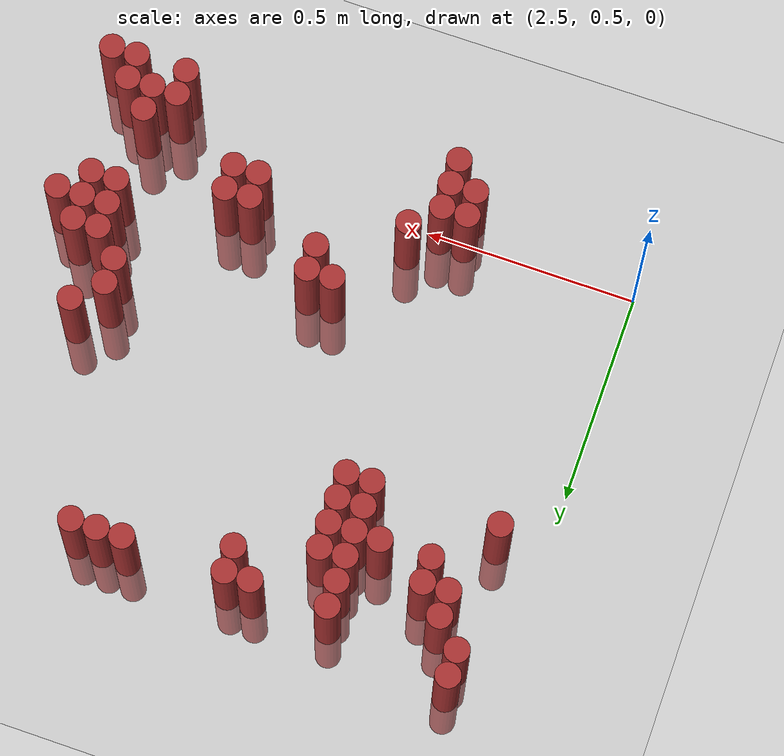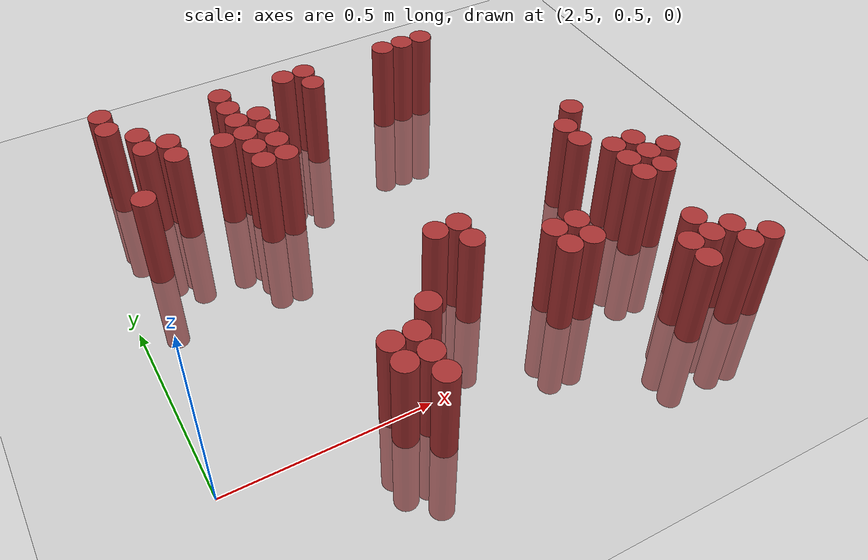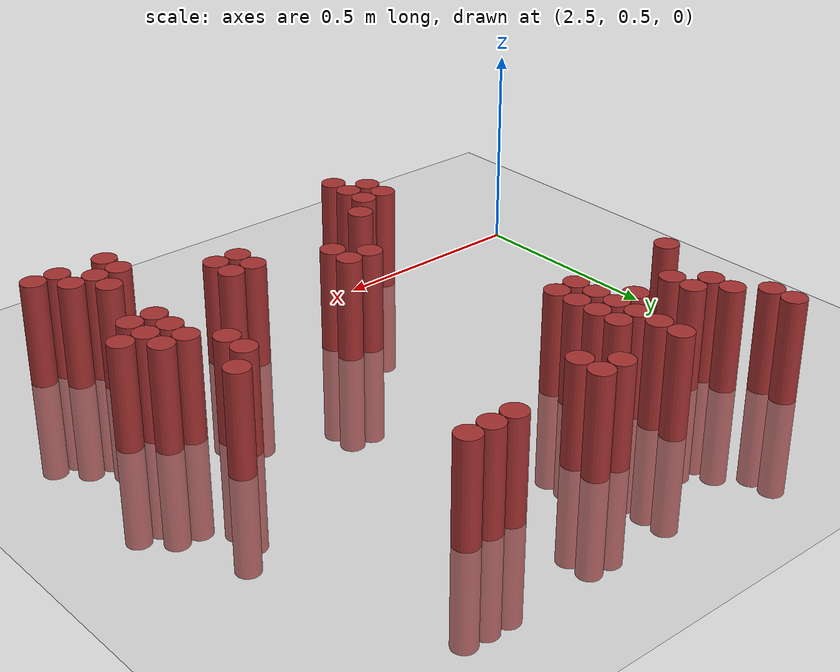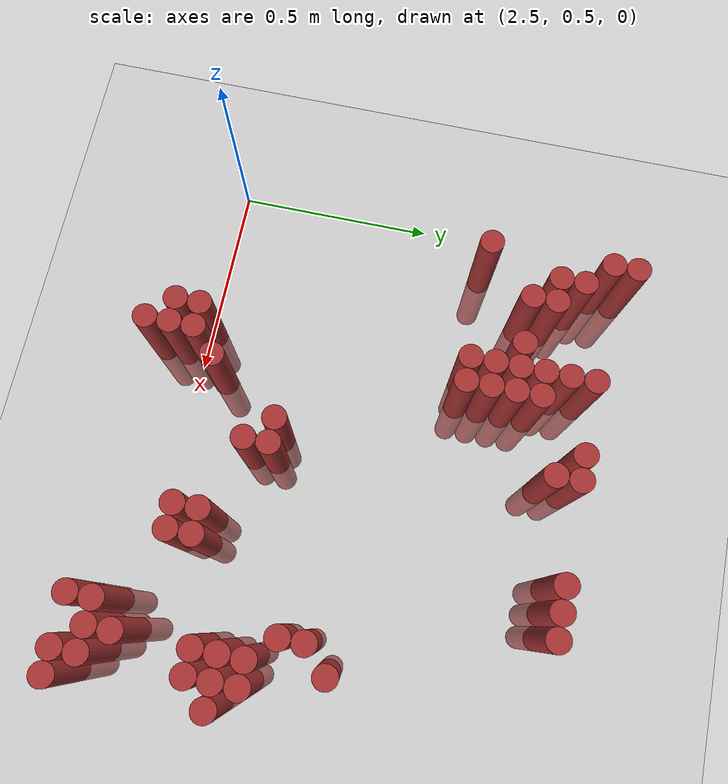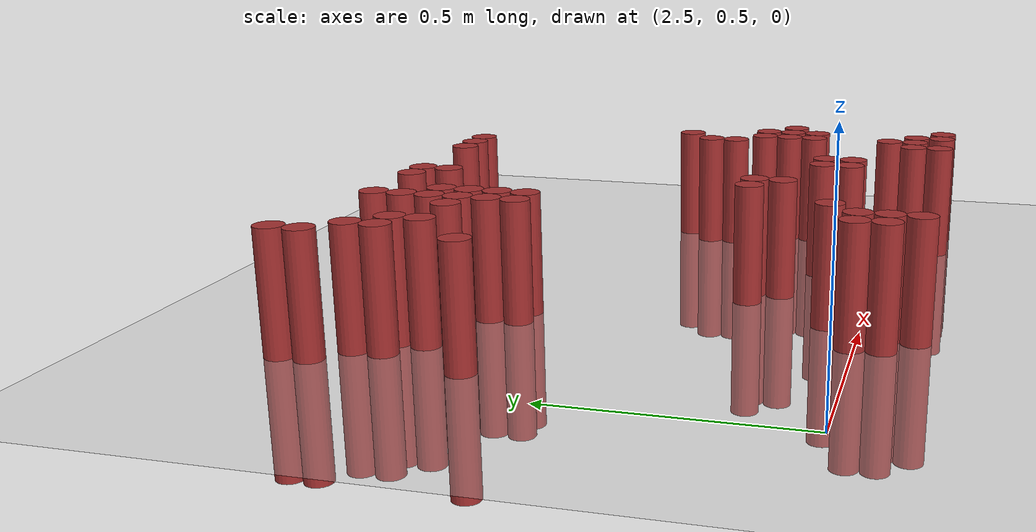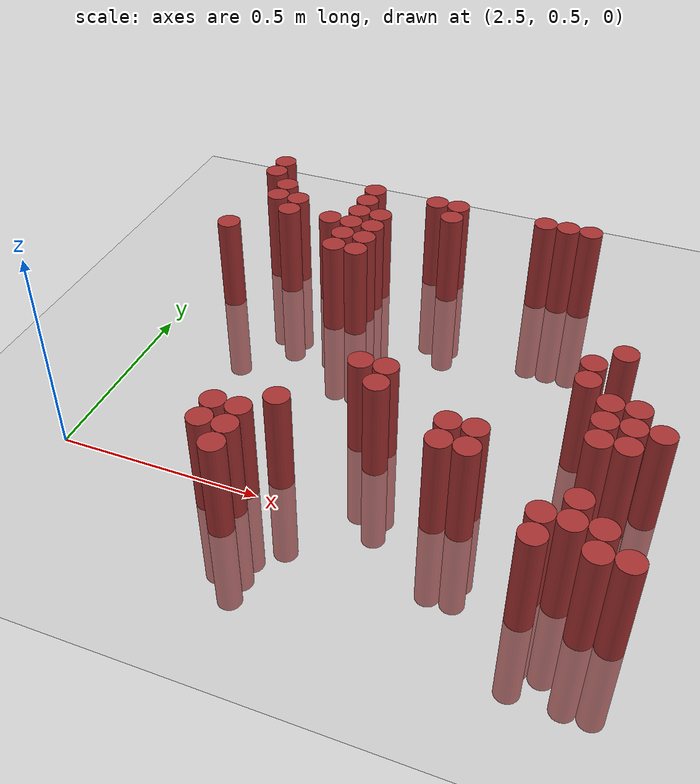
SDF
<sdf version="1.6">
 <world name="default">
  <model name="ground_plane">
   <static>1</static>
   <link name="link">
    <collision name="collision">
     <geometry><plane><normal>0 0 1</normal><size>100 100</size></plane></geometry>
     <surface><friction><ode><mu>100</mu><mu2>50</mu2></ode></friction></surface>
    </collision>
    <visual name="visual">
     <cast_shadows>0</cast_shadows>
     <geometry><plane><normal>0 0 1</normal><size>100 100</size></plane></geometry>
     <material>
      <script><uri>file://media/materials/scripts/gazebo.material</uri><name>Gazebo/Grey</name></script>
     </material>
    </visual>
   </link>
  </model>
  <model name="unit_cylinder_168">
   <static>1</static>
   <pose>2.610000 1.530000 0.000000 0.000000 0.000000 0.000000</pose>
   <link name="link">
    <inertial>
     <mass>1</mass>
     <inertia><ixx>0.145833</ixx><ixy>0</ixy><ixz>0</ixz><iyy>0.145833</iyy><iyz>0</iyz><izz>0.125</izz></inertia>
    </inertial>
    <collision name="collision">
     <geometry><cylinder><radius>0.030000</radius><length>0.5</length></cylinder></geometry>
    </collision>
    <visual name="visual">
     <geometry><cylinder><radius>0.030000</radius><length>0.5</length></cylinder></geometry>
     <material>
      <ambient>0.648000 0.192000 0.192000 1</ambient>
      <diffuse>0.648000 0.192000 0.192000 1</diffuse>
     </material>
     <material>
      <script><name>Gazebo/Grey</name><uri>file://media/materials/scripts/gazebo.material</uri></script>
     </material>
    </visual>
   </link>
  </model>
  <model name="unit_cylinder_180">
   <static>1</static>
   <pose>2.610000 1.470000 0.000000 0.000000 0.000000 0.000000</pose>
   <link name="link">
    <inertial>
     <mass>1</mass>
     <inertia><ixx>0.145833</ixx><ixy>0</ixy><ixz>0</ixz><iyy>0.145833</iyy><iyz>0</iyz><izz>0.125</izz></inertia>
    </inertial>
    <collision name="collision">
     <geometry><cylinder><radius>0.030000</radius><length>0.5</length></cylinder></geometry>
    </collision>
    <visual name="visual">
     <geometry><cylinder><radius>0.030000</radius><length>0.5</length></cylinder></geometry>
     <material>
      <ambient>0.648000 0.192000 0.192000 1</ambient>
      <diffuse>0.648000 0.192000 0.192000 1</diffuse>
     </material>
     <material>
      <script><name>Gazebo/Grey</name><uri>file://media/materials/scripts/gazebo.material</uri></script>
     </material>
    </visual>
   </link>
  </model>
  <model name="unit_cylinder_181">
   <static>1</static>
   <pose>2.910000 1.470000 0.000000 0.000000 0.000000 0.000000</pose>
   <link name="link">
    <inertial>
     <mass>1</mass>
     <inertia><ixx>0.145833</ixx><ixy>0</ixy><ixz>0</ixz><iyy>0.145833</iyy><iyz>0</iyz><izz>0.125</izz></inertia>
    </inertial>
    <collision name="collision">
     <geometry><cylinder><radius>0.030000</radius><length>0.5</length></cylinder></geometry>
    </collision>
    <visual name="visual">
     <geometry><cylinder><radius>0.030000</radius><length>0.5</length></cylinder></geometry>
     <material>
      <ambient>0.648000 0.192000 0.192000 1</ambient>
      <diffuse>0.648000 0.192000 0.192000 1</diffuse>
     </material>
     <material>
      <script><name>Gazebo/Grey</name><uri>file://media/materials/scripts/gazebo.material</uri></script>
     </material>
    </visual>
   </link>
  </model>
  <model name="unit_cylinder_182">
   <static>1</static>
   <pose>3.090000 1.470000 0.000000 0.000000 0.000000 0.000000</pose>
   <link name="link">
    <inertial>
     <mass>1</mass>
     <inertia><ixx>0.145833</ixx><ixy>0</ixy><ixz>0</ixz><iyy>0.145833</iyy><iyz>0</iyz><izz>0.125</izz></inertia>
    </inertial>
    <collision name="collision">
     <geometry><cylinder><radius>0.030000</radius><length>0.5</length></cylinder></geometry>
    </collision>
    <visual name="visual">
     <geometry><cylinder><radius>0.030000</radius><length>0.5</length></cylinder></geometry>
     <material>
      <ambient>0.648000 0.192000 0.192000 1</ambient>
      <diffuse>0.648000 0.192000 0.192000 1</diffuse>
     </material>
     <material>
      <script><name>Gazebo/Grey</name><uri>file://media/materials/scripts/gazebo.material</uri></script>
     </material>
    </visual>
   </link>
  </model>
  <model name="unit_cylinder_183">
   <static>1</static>
   <pose>3.150000 1.470000 0.000000 0.000000 0.000000 0.000000</pose>
   <link name="link">
    <inertial>
     <mass>1</mass>
     <inertia><ixx>0.145833</ixx><ixy>0</ixy><ixz>0</ixz><iyy>0.145833</iyy><iyz>0</iyz><izz>0.125</izz></inertia>
    </inertial>
    <collision name="collision">
     <geometry><cylinder><radius>0.030000</radius><length>0.5</length></cylinder></geometry>
    </collision>
    <visual name="visual">
     <geometry><cylinder><radius>0.030000</radius><length>0.5</length></cylinder></geometry>
     <material>
      <ambient>0.648000 0.192000 0.192000 1</ambient>
      <diffuse>0.648000 0.192000 0.192000 1</diffuse>
     </material>
     <material>
      <script><name>Gazebo/Grey</name><uri>file://media/materials/scripts/gazebo.material</uri></script>
     </material>
    </visual>
   </link>
  </model>
  <model name="unit_cylinder_184">
   <static>1</static>
   <pose>3.390000 1.470000 0.000000 0.000000 0.000000 0.000000</pose>
   <link name="link">
    <inertial>
     <mass>1</mass>
     <inertia><ixx>0.145833</ixx><ixy>0</ixy><ixz>0</ixz><iyy>0.145833</iyy><iyz>0</iyz><izz>0.125</izz></inertia>
    </inertial>
    <collision name="collision">
     <geometry><cylinder><radius>0.030000</radius><length>0.5</length></cylinder></geometry>
    </collision>
    <visual name="visual">
     <geometry><cylinder><radius>0.030000</radius><length>0.5</length></cylinder></geometry>
     <material>
      <ambient>0.648000 0.192000 0.192000 1</ambient>
      <diffuse>0.648000 0.192000 0.192000 1</diffuse>
     </material>
     <material>
      <script><name>Gazebo/Grey</name><uri>file://media/materials/scripts/gazebo.material</uri></script>
     </material>
    </visual>
   </link>
  </model>
  <model name="unit_cylinder_185">
   <static>1</static>
   <pose>3.450000 1.470000 0.000000 0.000000 0.000000 0.000000</pose>
   <link name="link">
    <inertial>
     <mass>1</mass>
     <inertia><ixx>0.145833</ixx><ixy>0</ixy><ixz>0</ixz><iyy>0.145833</iyy><iyz>0</iyz><izz>0.125</izz></inertia>
    </inertial>
    <collision name="collision">
     <geometry><cylinder><radius>0.030000</radius><length>0.5</length></cylinder></geometry>
    </collision>
    <visual name="visual">
     <geometry><cylinder><radius>0.030000</radius><length>0.5</length></cylinder></geometry>
     <material>
      <ambient>0.648000 0.192000 0.192000 1</ambient>
      <diffuse>0.648000 0.192000 0.192000 1</diffuse>
     </material>
     <material>
      <script><name>Gazebo/Grey</name><uri>file://media/materials/scripts/gazebo.material</uri></script>
     </material>
    </visual>
   </link>
  </model>
  <model name="unit_cylinder_186">
   <static>1</static>
   <pose>3.510000 1.470000 0.000000 0.000000 0.000000 0.000000</pose>
   <link name="link">
    <inertial>
     <mass>1</mass>
     <inertia><ixx>0.145833</ixx><ixy>0</ixy><ixz>0</ixz><iyy>0.145833</iyy><iyz>0</iyz><izz>0.125</izz></inertia>
    </inertial>
    <collision name="collision">
     <geometry><cylinder><radius>0.030000</radius><length>0.5</length></cylinder></geometry>
    </collision>
    <visual name="visual">
     <geometry><cylinder><radius>0.030000</radius><length>0.5</length></cylinder></geometry>
     <material>
      <ambient>0.648000 0.192000 0.192000 1</ambient>
      <diffuse>0.648000 0.192000 0.192000 1</diffuse>
     </material>
     <material>
      <script><name>Gazebo/Grey</name><uri>file://media/materials/scripts/gazebo.material</uri></script>
     </material>
    </visual>
   </link>
  </model>
  <model name="unit_cylinder_189">
   <static>1</static>
   <pose>2.670000 1.410000 0.000000 0.000000 0.000000 0.000000</pose>
   <link name="link">
    <inertial>
     <mass>1</mass>
     <inertia><ixx>0.145833</ixx><ixy>0</ixy><ixz>0</ixz><iyy>0.145833</iyy><iyz>0</iyz><izz>0.125</izz></inertia>
    </inertial>
    <collision name="collision">
     <geometry><cylinder><radius>0.030000</radius><length>0.5</length></cylinder></geometry>
    </collision>
    <visual name="visual">
     <geometry><cylinder><radius>0.030000</radius><length>0.5</length></cylinder></geometry>
     <material>
      <ambient>0.648000 0.192000 0.192000 1</ambient>
      <diffuse>0.648000 0.192000 0.192000 1</diffuse>
     </material>
     <material>
      <script><name>Gazebo/Grey</name><uri>file://media/materials/scripts/gazebo.material</uri></script>
     </material>
    </visual>
   </link>
  </model>
  <model name="unit_cylinder_190">
   <static>1</static>
   <pose>2.910000 1.410000 0.000000 0.000000 0.000000 0.000000</pose>
   <link name="link">
    <inertial>
     <mass>1</mass>
     <inertia><ixx>0.145833</ixx><ixy>0</ixy><ixz>0</ixz><iyy>0.145833</iyy><iyz>0</iyz><izz>0.125</izz></inertia>
    </inertial>
    <collision name="collision">
     <geometry><cylinder><radius>0.030000</radius><length>0.5</length></cylinder></geometry>
    </collision>
    <visual name="visual">
     <geometry><cylinder><radius>0.030000</radius><length>0.5</length></cylinder></geometry>
     <material>
      <ambient>0.648000 0.192000 0.192000 1</ambient>
      <diffuse>0.648000 0.192000 0.192000 1</diffuse>
     </material>
     <material>
      <script><name>Gazebo/Grey</name><uri>file://media/materials/scripts/gazebo.material</uri></script>
     </material>
    </visual>
   </link>
  </model>
  <model name="unit_cylinder_191">
   <static>1</static>
   <pose>3.150000 1.410000 0.000000 0.000000 0.000000 0.000000</pose>
   <link name="link">
    <inertial>
     <mass>1</mass>
     <inertia><ixx>0.145833</ixx><ixy>0</ixy><ixz>0</ixz><iyy>0.145833</iyy><iyz>0</iyz><izz>0.125</izz></inertia>
    </inertial>
    <collision name="collision">
     <geometry><cylinder><radius>0.030000</radius><length>0.5</length></cylinder></geometry>
    </collision>
    <visual name="visual">
     <geometry><cylinder><radius>0.030000</radius><length>0.5</length></cylinder></geometry>
     <material>
      <ambient>0.648000 0.192000 0.192000 1</ambient>
      <diffuse>0.648000 0.192000 0.192000 1</diffuse>
     </material>
     <material>
      <script><name>Gazebo/Grey</name><uri>file://media/materials/scripts/gazebo.material</uri></script>
     </material>
    </visual>
   </link>
  </model>
  <model name="unit_cylinder_194">
   <static>1</static>
   <pose>2.670000 1.350000 0.000000 0.000000 0.000000 0.000000</pose>
   <link name="link">
    <inertial>
     <mass>1</mass>
     <inertia><ixx>0.145833</ixx><ixy>0</ixy><ixz>0</ixz><iyy>0.145833</iyy><iyz>0</iyz><izz>0.125</izz></inertia>
    </inertial>
    <collision name="collision">
     <geometry><cylinder><radius>0.030000</radius><length>0.5</length></cylinder></geometry>
    </collision>
    <visual name="visual">
     <geometry><cylinder><radius>0.030000</radius><length>0.5</length></cylinder></geometry>
     <material>
      <ambient>0.648000 0.192000 0.192000 1</ambient>
      <diffuse>0.648000 0.192000 0.192000 1</diffuse>
     </material>
     <material>
      <script><name>Gazebo/Grey</name><uri>file://media/materials/scripts/gazebo.material</uri></script>
     </material>
    </visual>
   </link>
  </model>
  <model name="unit_cylinder_195">
   <static>1</static>
   <pose>2.730000 1.350000 0.000000 0.000000 0.000000 0.000000</pose>
   <link name="link">
    <inertial>
     <mass>1</mass>
     <inertia><ixx>0.145833</ixx><ixy>0</ixy><ixz>0</ixz><iyy>0.145833</iyy><iyz>0</iyz><izz>0.125</izz></inertia>
    </inertial>
    <collision name="collision">
     <geometry><cylinder><radius>0.030000</radius><length>0.5</length></cylinder></geometry>
    </collision>
    <visual name="visual">
     <geometry><cylinder><radius>0.030000</radius><length>0.5</length></cylinder></geometry>
     <material>
      <ambient>0.648000 0.192000 0.192000 1</ambient>
      <diffuse>0.648000 0.192000 0.192000 1</diffuse>
     </material>
     <material>
      <script><name>Gazebo/Grey</name><uri>file://media/materials/scripts/gazebo.material</uri></script>
     </material>
    </visual>
   </link>
  </model>
  <model name="unit_cylinder_196">
   <static>1</static>
   <pose>2.910000 1.350000 0.000000 0.000000 0.000000 0.000000</pose>
   <link name="link">
    <inertial>
     <mass>1</mass>
     <inertia><ixx>0.145833</ixx><ixy>0</ixy><ixz>0</ixz><iyy>0.145833</iyy><iyz>0</iyz><izz>0.125</izz></inertia>
    </inertial>
    <collision name="collision">
     <geometry><cylinder><radius>0.030000</radius><length>0.5</length></cylinder></geometry>
    </collision>
    <visual name="visual">
     <geometry><cylinder><radius>0.030000</radius><length>0.5</length></cylinder></geometry>
     <material>
      <ambient>0.648000 0.192000 0.192000 1</ambient>
      <diffuse>0.648000 0.192000 0.192000 1</diffuse>
     </material>
     <material>
      <script><name>Gazebo/Grey</name><uri>file://media/materials/scripts/gazebo.material</uri></script>
     </material>
    </visual>
   </link>
  </model>
  <model name="unit_cylinder_197">
   <static>1</static>
   <pose>2.970000 1.350000 0.000000 0.000000 0.000000 0.000000</pose>
   <link name="link">
    <inertial>
     <mass>1</mass>
     <inertia><ixx>0.145833</ixx><ixy>0</ixy><ixz>0</ixz><iyy>0.145833</iyy><iyz>0</iyz><izz>0.125</izz></inertia>
    </inertial>
    <collision name="collision">
     <geometry><cylinder><radius>0.030000</radius><length>0.5</length></cylinder></geometry>
    </collision>
    <visual name="visual">
     <geometry><cylinder><radius>0.030000</radius><length>0.5</length></cylinder></geometry>
     <material>
      <ambient>0.648000 0.192000 0.192000 1</ambient>
      <diffuse>0.648000 0.192000 0.192000 1</diffuse>
     </material>
     <material>
      <script><name>Gazebo/Grey</name><uri>file://media/materials/scripts/gazebo.material</uri></script>
     </material>
    </visual>
   </link>
  </model>
  <model name="unit_cylinder_200">
   <static>1</static>
   <pose>2.730000 1.290000 0.000000 0.000000 0.000000 0.000000</pose>
   <link name="link">
    <inertial>
     <mass>1</mass>
     <inertia><ixx>0.145833</ixx><ixy>0</ixy><ixz>0</ixz><iyy>0.145833</iyy><iyz>0</iyz><izz>0.125</izz></inertia>
    </inertial>
    <collision name="collision">
     <geometry><cylinder><radius>0.030000</radius><length>0.5</length></cylinder></geometry>
    </collision>
    <visual name="visual">
     <geometry><cylinder><radius>0.030000</radius><length>0.5</length></cylinder></geometry>
     <material>
      <ambient>0.648000 0.192000 0.192000 1</ambient>
      <diffuse>0.648000 0.192000 0.192000 1</diffuse>
     </material>
     <material>
      <script><name>Gazebo/Grey</name><uri>file://media/materials/scripts/gazebo.material</uri></script>
     </material>
    </visual>
   </link>
  </model>
  <model name="unit_cylinder_201">
   <static>1</static>
   <pose>2.850000 1.290000 0.000000 0.000000 0.000000 0.000000</pose>
   <link name="link">
    <inertial>
     <mass>1</mass>
     <inertia><ixx>0.145833</ixx><ixy>0</ixy><ixz>0</ixz><iyy>0.145833</iyy><iyz>0</iyz><izz>0.125</izz></inertia>
    </inertial>
    <collision name="collision">
     <geometry><cylinder><radius>0.030000</radius><length>0.5</length></cylinder></geometry>
    </collision>
    <visual name="visual">
     <geometry><cylinder><radius>0.030000</radius><length>0.5</length></cylinder></geometry>
     <material>
      <ambient>0.648000 0.192000 0.192000 1</ambient>
      <diffuse>0.648000 0.192000 0.192000 1</diffuse>
     </material>
     <material>
      <script><name>Gazebo/Grey</name><uri>file://media/materials/scripts/gazebo.material</uri></script>
     </material>
    </visual>
   </link>
  </model>
  <model name="unit_cylinder_202">
   <static>1</static>
   <pose>2.910000 1.290000 0.000000 0.000000 0.000000 0.000000</pose>
   <link name="link">
    <inertial>
     <mass>1</mass>
     <inertia><ixx>0.145833</ixx><ixy>0</ixy><ixz>0</ixz><iyy>0.145833</iyy><iyz>0</iyz><izz>0.125</izz></inertia>
    </inertial>
    <collision name="collision">
     <geometry><cylinder><radius>0.030000</radius><length>0.5</length></cylinder></geometry>
    </collision>
    <visual name="visual">
     <geometry><cylinder><radius>0.030000</radius><length>0.5</length></cylinder></geometry>
     <material>
      <ambient>0.648000 0.192000 0.192000 1</ambient>
      <diffuse>0.648000 0.192000 0.192000 1</diffuse>
     </material>
     <material>
      <script><name>Gazebo/Grey</name><uri>file://media/materials/scripts/gazebo.material</uri></script>
     </material>
    </visual>
   </link>
  </model>
  <model name="unit_cylinder_203">
   <static>1</static>
   <pose>2.970000 1.290000 0.000000 0.000000 0.000000 0.000000</pose>
   <link name="link">
    <inertial>
     <mass>1</mass>
     <inertia><ixx>0.145833</ixx><ixy>0</ixy><ixz>0</ixz><iyy>0.145833</iyy><iyz>0</iyz><izz>0.125</izz></inertia>
    </inertial>
    <collision name="collision">
     <geometry><cylinder><radius>0.030000</radius><length>0.5</length></cylinder></geometry>
    </collision>
    <visual name="visual">
     <geometry><cylinder><radius>0.030000</radius><length>0.5</length></cylinder></geometry>
     <material>
      <ambient>0.648000 0.192000 0.192000 1</ambient>
      <diffuse>0.648000 0.192000 0.192000 1</diffuse>
     </material>
     <material>
      <script><name>Gazebo/Grey</name><uri>file://media/materials/scripts/gazebo.material</uri></script>
     </material>
    </visual>
   </link>
  </model>
  <model name="unit_cylinder_207">
   <static>1</static>
   <pose>2.910000 1.230000 0.000000 0.000000 0.000000 0.000000</pose>
   <link name="link">
    <inertial>
     <mass>1</mass>
     <inertia><ixx>0.145833</ixx><ixy>0</ixy><ixz>0</ixz><iyy>0.145833</iyy><iyz>0</iyz><izz>0.125</izz></inertia>
    </inertial>
    <collision name="collision">
     <geometry><cylinder><radius>0.030000</radius><length>0.5</length></cylinder></geometry>
    </collision>
    <visual name="visual">
     <geometry><cylinder><radius>0.030000</radius><length>0.5</length></cylinder></geometry>
     <material>
      <ambient>0.648000 0.192000 0.192000 1</ambient>
      <diffuse>0.648000 0.192000 0.192000 1</diffuse>
     </material>
     <material>
      <script><name>Gazebo/Grey</name><uri>file://media/materials/scripts/gazebo.material</uri></script>
     </material>
    </visual>
   </link>
  </model>
  <model name="unit_cylinder_208">
   <static>1</static>
   <pose>2.970000 1.230000 0.000000 0.000000 0.000000 0.000000</pose>
   <link name="link">
    <inertial>
     <mass>1</mass>
     <inertia><ixx>0.145833</ixx><ixy>0</ixy><ixz>0</ixz><iyy>0.145833</iyy><iyz>0</iyz><izz>0.125</izz></inertia>
    </inertial>
    <collision name="collision">
     <geometry><cylinder><radius>0.030000</radius><length>0.5</length></cylinder></geometry>
    </collision>
    <visual name="visual">
     <geometry><cylinder><radius>0.030000</radius><length>0.5</length></cylinder></geometry>
     <material>
      <ambient>0.648000 0.192000 0.192000 1</ambient>
      <diffuse>0.648000 0.192000 0.192000 1</diffuse>
     </material>
     <material>
      <script><name>Gazebo/Grey</name><uri>file://media/materials/scripts/gazebo.material</uri></script>
     </material>
    </visual>
   </link>
  </model>
  <model name="unit_cylinder_210">
   <static>1</static>
   <pose>2.610000 1.170000 0.000000 0.000000 0.000000 0.000000</pose>
   <link name="link">
    <inertial>
     <mass>1</mass>
     <inertia><ixx>0.145833</ixx><ixy>0</ixy><ixz>0</ixz><iyy>0.145833</iyy><iyz>0</iyz><izz>0.125</izz></inertia>
    </inertial>
    <collision name="collision">
     <geometry><cylinder><radius>0.030000</radius><length>0.5</length></cylinder></geometry>
    </collision>
    <visual name="visual">
     <geometry><cylinder><radius>0.030000</radius><length>0.5</length></cylinder></geometry>
     <material>
      <ambient>0.648000 0.192000 0.192000 1</ambient>
      <diffuse>0.648000 0.192000 0.192000 1</diffuse>
     </material>
     <material>
      <script><name>Gazebo/Grey</name><uri>file://media/materials/scripts/gazebo.material</uri></script>
     </material>
    </visual>
   </link>
  </model>
  <model name="unit_cylinder_211">
   <static>1</static>
   <pose>2.910000 1.170000 0.000000 0.000000 0.000000 0.000000</pose>
   <link name="link">
    <inertial>
     <mass>1</mass>
     <inertia><ixx>0.145833</ixx><ixy>0</ixy><ixz>0</ixz><iyy>0.145833</iyy><iyz>0</iyz><izz>0.125</izz></inertia>
    </inertial>
    <collision name="collision">
     <geometry><cylinder><radius>0.030000</radius><length>0.5</length></cylinder></geometry>
    </collision>
    <visual name="visual">
     <geometry><cylinder><radius>0.030000</radius><length>0.5</length></cylinder></geometry>
     <material>
      <ambient>0.648000 0.192000 0.192000 1</ambient>
      <diffuse>0.648000 0.192000 0.192000 1</diffuse>
     </material>
     <material>
      <script><name>Gazebo/Grey</name><uri>file://media/materials/scripts/gazebo.material</uri></script>
     </material>
    </visual>
   </link>
  </model>
  <model name="unit_cylinder_212">
   <static>1</static>
   <pose>2.970000 1.170000 0.000000 0.000000 0.000000 0.000000</pose>
   <link name="link">
    <inertial>
     <mass>1</mass>
     <inertia><ixx>0.145833</ixx><ixy>0</ixy><ixz>0</ixz><iyy>0.145833</iyy><iyz>0</iyz><izz>0.125</izz></inertia>
    </inertial>
    <collision name="collision">
     <geometry><cylinder><radius>0.030000</radius><length>0.5</length></cylinder></geometry>
    </collision>
    <visual name="visual">
     <geometry><cylinder><radius>0.030000</radius><length>0.5</length></cylinder></geometry>
     <material>
      <ambient>0.648000 0.192000 0.192000 1</ambient>
      <diffuse>0.648000 0.192000 0.192000 1</diffuse>
     </material>
     <material>
      <script><name>Gazebo/Grey</name><uri>file://media/materials/scripts/gazebo.material</uri></script>
     </material>
    </visual>
   </link>
  </model>
  <model name="unit_cylinder_213">
   <static>1</static>
   <pose>3.690000 0.990000 0.000000 0.000000 0.000000 0.000000</pose>
   <link name="link">
    <inertial>
     <mass>1</mass>
     <inertia><ixx>0.145833</ixx><ixy>0</ixy><ixz>0</ixz><iyy>0.145833</iyy><iyz>0</iyz><izz>0.125</izz></inertia>
    </inertial>
    <collision name="collision">
     <geometry><cylinder><radius>0.030000</radius><length>0.5</length></cylinder></geometry>
    </collision>
    <visual name="visual">
     <geometry><cylinder><radius>0.030000</radius><length>0.5</length></cylinder></geometry>
     <material>
      <ambient>0.648000 0.192000 0.192000 1</ambient>
      <diffuse>0.648000 0.192000 0.192000 1</diffuse>
     </material>
     <material>
      <script><name>Gazebo/Grey</name><uri>file://media/materials/scripts/gazebo.material</uri></script>
     </material>
    </visual>
   </link>
  </model>
  <model name="unit_cylinder_216">
   <static>1</static>
   <pose>3.630000 0.930000 0.000000 0.000000 0.000000 0.000000</pose>
   <link name="link">
    <inertial>
     <mass>1</mass>
     <inertia><ixx>0.145833</ixx><ixy>0</ixy><ixz>0</ixz><iyy>0.145833</iyy><iyz>0</iyz><izz>0.125</izz></inertia>
    </inertial>
    <collision name="collision">
     <geometry><cylinder><radius>0.030000</radius><length>0.5</length></cylinder></geometry>
    </collision>
    <visual name="visual">
     <geometry><cylinder><radius>0.030000</radius><length>0.5</length></cylinder></geometry>
     <material>
      <ambient>0.648000 0.192000 0.192000 1</ambient>
      <diffuse>0.648000 0.192000 0.192000 1</diffuse>
     </material>
     <material>
      <script><name>Gazebo/Grey</name><uri>file://media/materials/scripts/gazebo.material</uri></script>
     </material>
    </visual>
   </link>
  </model>
  <model name="unit_cylinder_220">
   <static>1</static>
   <pose>3.630000 0.870000 0.000000 0.000000 0.000000 0.000000</pose>
   <link name="link">
    <inertial>
     <mass>1</mass>
     <inertia><ixx>0.145833</ixx><ixy>0</ixy><ixz>0</ixz><iyy>0.145833</iyy><iyz>0</iyz><izz>0.125</izz></inertia>
    </inertial>
    <collision name="collision">
     <geometry><cylinder><radius>0.030000</radius><length>0.5</length></cylinder></geometry>
    </collision>
    <visual name="visual">
     <geometry><cylinder><radius>0.030000</radius><length>0.5</length></cylinder></geometry>
     <material>
      <ambient>0.648000 0.192000 0.192000 1</ambient>
      <diffuse>0.648000 0.192000 0.192000 1</diffuse>
     </material>
     <material>
      <script><name>Gazebo/Grey</name><uri>file://media/materials/scripts/gazebo.material</uri></script>
     </material>
    </visual>
   </link>
  </model>
  <model name="unit_cylinder_221">
   <static>1</static>
   <pose>3.690000 0.810000 0.000000 0.000000 0.000000 0.000000</pose>
   <link name="link">
    <inertial>
     <mass>1</mass>
     <inertia><ixx>0.145833</ixx><ixy>0</ixy><ixz>0</ixz><iyy>0.145833</iyy><iyz>0</iyz><izz>0.125</izz></inertia>
    </inertial>
    <collision name="collision">
     <geometry><cylinder><radius>0.030000</radius><length>0.5</length></cylinder></geometry>
    </collision>
    <visual name="visual">
     <geometry><cylinder><radius>0.030000</radius><length>0.5</length></cylinder></geometry>
     <material>
      <ambient>0.648000 0.192000 0.192000 1</ambient>
      <diffuse>0.648000 0.192000 0.192000 1</diffuse>
     </material>
     <material>
      <script><name>Gazebo/Grey</name><uri>file://media/materials/scripts/gazebo.material</uri></script>
     </material>
    </visual>
   </link>
  </model>
  <model name="unit_cylinder_222">
   <static>1</static>
   <pose>3.750000 0.810000 0.000000 0.000000 0.000000 0.000000</pose>
   <link name="link">
    <inertial>
     <mass>1</mass>
     <inertia><ixx>0.145833</ixx><ixy>0</ixy><ixz>0</ixz><iyy>0.145833</iyy><iyz>0</iyz><izz>0.125</izz></inertia>
    </inertial>
    <collision name="collision">
     <geometry><cylinder><radius>0.030000</radius><length>0.5</length></cylinder></geometry>
    </collision>
    <visual name="visual">
     <geometry><cylinder><radius>0.030000</radius><length>0.5</length></cylinder></geometry>
     <material>
      <ambient>0.648000 0.192000 0.192000 1</ambient>
      <diffuse>0.648000 0.192000 0.192000 1</diffuse>
     </material>
     <material>
      <script><name>Gazebo/Grey</name><uri>file://media/materials/scripts/gazebo.material</uri></script>
     </material>
    </visual>
   </link>
  </model>
  <model name="unit_cylinder_223">
   <static>1</static>
   <pose>3.150000 0.750000 0.000000 0.000000 0.000000 0.000000</pose>
   <link name="link">
    <inertial>
     <mass>1</mass>
     <inertia><ixx>0.145833</ixx><ixy>0</ixy><ixz>0</ixz><iyy>0.145833</iyy><iyz>0</iyz><izz>0.125</izz></inertia>
    </inertial>
    <collision name="collision">
     <geometry><cylinder><radius>0.030000</radius><length>0.5</length></cylinder></geometry>
    </collision>
    <visual name="visual">
     <geometry><cylinder><radius>0.030000</radius><length>0.5</length></cylinder></geometry>
     <material>
      <ambient>0.648000 0.192000 0.192000 1</ambient>
      <diffuse>0.648000 0.192000 0.192000 1</diffuse>
     </material>
     <material>
      <script><name>Gazebo/Grey</name><uri>file://media/materials/scripts/gazebo.material</uri></script>
     </material>
    </visual>
   </link>
  </model>
  <model name="unit_cylinder_224">
   <static>1</static>
   <pose>3.210000 0.750000 0.000000 0.000000 0.000000 0.000000</pose>
   <link name="link">
    <inertial>
     <mass>1</mass>
     <inertia><ixx>0.145833</ixx><ixy>0</ixy><ixz>0</ixz><iyy>0.145833</iyy><iyz>0</iyz><izz>0.125</izz></inertia>
    </inertial>
    <collision name="collision">
     <geometry><cylinder><radius>0.030000</radius><length>0.5</length></cylinder></geometry>
    </collision>
    <visual name="visual">
     <geometry><cylinder><radius>0.030000</radius><length>0.5</length></cylinder></geometry>
     <material>
      <ambient>0.648000 0.192000 0.192000 1</ambient>
      <diffuse>0.648000 0.192000 0.192000 1</diffuse>
     </material>
     <material>
      <script><name>Gazebo/Grey</name><uri>file://media/materials/scripts/gazebo.material</uri></script>
     </material>
    </visual>
   </link>
  </model>
  <model name="unit_cylinder_225">
   <static>1</static>
   <pose>3.690000 0.750000 0.000000 0.000000 0.000000 0.000000</pose>
   <link name="link">
    <inertial>
     <mass>1</mass>
     <inertia><ixx>0.145833</ixx><ixy>0</ixy><ixz>0</ixz><iyy>0.145833</iyy><iyz>0</iyz><izz>0.125</izz></inertia>
    </inertial>
    <collision name="collision">
     <geometry><cylinder><radius>0.030000</radius><length>0.5</length></cylinder></geometry>
    </collision>
    <visual name="visual">
     <geometry><cylinder><radius>0.030000</radius><length>0.5</length></cylinder></geometry>
     <material>
      <ambient>0.648000 0.192000 0.192000 1</ambient>
      <diffuse>0.648000 0.192000 0.192000 1</diffuse>
     </material>
     <material>
      <script><name>Gazebo/Grey</name><uri>file://media/materials/scripts/gazebo.material</uri></script>
     </material>
    </visual>
   </link>
  </model>
  <model name="unit_cylinder_226">
   <static>1</static>
   <pose>3.750000 0.750000 0.000000 0.000000 0.000000 0.000000</pose>
   <link name="link">
    <inertial>
     <mass>1</mass>
     <inertia><ixx>0.145833</ixx><ixy>0</ixy><ixz>0</ixz><iyy>0.145833</iyy><iyz>0</iyz><izz>0.125</izz></inertia>
    </inertial>
    <collision name="collision">
     <geometry><cylinder><radius>0.030000</radius><length>0.5</length></cylinder></geometry>
    </collision>
    <visual name="visual">
     <geometry><cylinder><radius>0.030000</radius><length>0.5</length></cylinder></geometry>
     <material>
      <ambient>0.648000 0.192000 0.192000 1</ambient>
      <diffuse>0.648000 0.192000 0.192000 1</diffuse>
     </material>
     <material>
      <script><name>Gazebo/Grey</name><uri>file://media/materials/scripts/gazebo.material</uri></script>
     </material>
    </visual>
   </link>
  </model>
  <model name="unit_cylinder_227">
   <static>1</static>
   <pose>3.810000 0.750000 0.000000 0.000000 0.000000 0.000000</pose>
   <link name="link">
    <inertial>
     <mass>1</mass>
     <inertia><ixx>0.145833</ixx><ixy>0</ixy><ixz>0</ixz><iyy>0.145833</iyy><iyz>0</iyz><izz>0.125</izz></inertia>
    </inertial>
    <collision name="collision">
     <geometry><cylinder><radius>0.030000</radius><length>0.5</length></cylinder></geometry>
    </collision>
    <visual name="visual">
     <geometry><cylinder><radius>0.030000</radius><length>0.5</length></cylinder></geometry>
     <material>
      <ambient>0.648000 0.192000 0.192000 1</ambient>
      <diffuse>0.648000 0.192000 0.192000 1</diffuse>
     </material>
     <material>
      <script><name>Gazebo/Grey</name><uri>file://media/materials/scripts/gazebo.material</uri></script>
     </material>
    </visual>
   </link>
  </model>
  <model name="unit_cylinder_228">
   <static>1</static>
   <pose>3.210000 0.690000 0.000000 0.000000 0.000000 0.000000</pose>
   <link name="link">
    <inertial>
     <mass>1</mass>
     <inertia><ixx>0.145833</ixx><ixy>0</ixy><ixz>0</ixz><iyy>0.145833</iyy><iyz>0</iyz><izz>0.125</izz></inertia>
    </inertial>
    <collision name="collision">
     <geometry><cylinder><radius>0.030000</radius><length>0.5</length></cylinder></geometry>
    </collision>
    <visual name="visual">
     <geometry><cylinder><radius>0.030000</radius><length>0.5</length></cylinder></geometry>
     <material>
      <ambient>0.648000 0.192000 0.192000 1</ambient>
      <diffuse>0.648000 0.192000 0.192000 1</diffuse>
     </material>
     <material>
      <script><name>Gazebo/Grey</name><uri>file://media/materials/scripts/gazebo.material</uri></script>
     </material>
    </visual>
   </link>
  </model>
  <model name="unit_cylinder_229">
   <static>1</static>
   <pose>3.690000 0.690000 0.000000 0.000000 0.000000 0.000000</pose>
   <link name="link">
    <inertial>
     <mass>1</mass>
     <inertia><ixx>0.145833</ixx><ixy>0</ixy><ixz>0</ixz><iyy>0.145833</iyy><iyz>0</iyz><izz>0.125</izz></inertia>
    </inertial>
    <collision name="collision">
     <geometry><cylinder><radius>0.030000</radius><length>0.5</length></cylinder></geometry>
    </collision>
    <visual name="visual">
     <geometry><cylinder><radius>0.030000</radius><length>0.5</length></cylinder></geometry>
     <material>
      <ambient>0.648000 0.192000 0.192000 1</ambient>
      <diffuse>0.648000 0.192000 0.192000 1</diffuse>
     </material>
     <material>
      <script><name>Gazebo/Grey</name><uri>file://media/materials/scripts/gazebo.material</uri></script>
     </material>
    </visual>
   </link>
  </model>
  <model name="unit_cylinder_230">
   <static>1</static>
   <pose>3.750000 0.690000 0.000000 0.000000 0.000000 0.000000</pose>
   <link name="link">
    <inertial>
     <mass>1</mass>
     <inertia><ixx>0.145833</ixx><ixy>0</ixy><ixz>0</ixz><iyy>0.145833</iyy><iyz>0</iyz><izz>0.125</izz></inertia>
    </inertial>
    <collision name="collision">
     <geometry><cylinder><radius>0.030000</radius><length>0.5</length></cylinder></geometry>
    </collision>
    <visual name="visual">
     <geometry><cylinder><radius>0.030000</radius><length>0.5</length></cylinder></geometry>
     <material>
      <ambient>0.648000 0.192000 0.192000 1</ambient>
      <diffuse>0.648000 0.192000 0.192000 1</diffuse>
     </material>
     <material>
      <script><name>Gazebo/Grey</name><uri>file://media/materials/scripts/gazebo.material</uri></script>
     </material>
    </visual>
   </link>
  </model>
  <model name="unit_cylinder_231">
   <static>1</static>
   <pose>3.390000 0.630000 0.000000 0.000000 0.000000 0.000000</pose>
   <link name="link">
    <inertial>
     <mass>1</mass>
     <inertia><ixx>0.145833</ixx><ixy>0</ixy><ixz>0</ixz><iyy>0.145833</iyy><iyz>0</iyz><izz>0.125</izz></inertia>
    </inertial>
    <collision name="collision">
     <geometry><cylinder><radius>0.030000</radius><length>0.5</length></cylinder></geometry>
    </collision>
    <visual name="visual">
     <geometry><cylinder><radius>0.030000</radius><length>0.5</length></cylinder></geometry>
     <material>
      <ambient>0.648000 0.192000 0.192000 1</ambient>
      <diffuse>0.648000 0.192000 0.192000 1</diffuse>
     </material>
     <material>
      <script><name>Gazebo/Grey</name><uri>file://media/materials/scripts/gazebo.material</uri></script>
     </material>
    </visual>
   </link>
  </model>
  <model name="unit_cylinder_232">
   <static>1</static>
   <pose>3.450000 0.630000 0.000000 0.000000 0.000000 0.000000</pose>
   <link name="link">
    <inertial>
     <mass>1</mass>
     <inertia><ixx>0.145833</ixx><ixy>0</ixy><ixz>0</ixz><iyy>0.145833</iyy><iyz>0</iyz><izz>0.125</izz></inertia>
    </inertial>
    <collision name="collision">
     <geometry><cylinder><radius>0.030000</radius><length>0.5</length></cylinder></geometry>
    </collision>
    <visual name="visual">
     <geometry><cylinder><radius>0.030000</radius><length>0.5</length></cylinder></geometry>
     <material>
      <ambient>0.648000 0.192000 0.192000 1</ambient>
      <diffuse>0.648000 0.192000 0.192000 1</diffuse>
     </material>
     <material>
      <script><name>Gazebo/Grey</name><uri>file://media/materials/scripts/gazebo.material</uri></script>
     </material>
    </visual>
   </link>
  </model>
  <model name="unit_cylinder_233">
   <static>1</static>
   <pose>3.030000 0.570000 0.000000 0.000000 0.000000 0.000000</pose>
   <link name="link">
    <inertial>
     <mass>1</mass>
     <inertia><ixx>0.145833</ixx><ixy>0</ixy><ixz>0</ixz><iyy>0.145833</iyy><iyz>0</iyz><izz>0.125</izz></inertia>
    </inertial>
    <collision name="collision">
     <geometry><cylinder><radius>0.030000</radius><length>0.5</length></cylinder></geometry>
    </collision>
    <visual name="visual">
     <geometry><cylinder><radius>0.030000</radius><length>0.5</length></cylinder></geometry>
     <material>
      <ambient>0.648000 0.192000 0.192000 1</ambient>
      <diffuse>0.648000 0.192000 0.192000 1</diffuse>
     </material>
     <material>
      <script><name>Gazebo/Grey</name><uri>file://media/materials/scripts/gazebo.material</uri></script>
     </material>
    </visual>
   </link>
  </model>
  <model name="unit_cylinder_234">
   <static>1</static>
   <pose>3.390000 0.570000 0.000000 0.000000 0.000000 0.000000</pose>
   <link name="link">
    <inertial>
     <mass>1</mass>
     <inertia><ixx>0.145833</ixx><ixy>0</ixy><ixz>0</ixz><iyy>0.145833</iyy><iyz>0</iyz><izz>0.125</izz></inertia>
    </inertial>
    <collision name="collision">
     <geometry><cylinder><radius>0.030000</radius><length>0.5</length></cylinder></geometry>
    </collision>
    <visual name="visual">
     <geometry><cylinder><radius>0.030000</radius><length>0.5</length></cylinder></geometry>
     <material>
      <ambient>0.648000 0.192000 0.192000 1</ambient>
      <diffuse>0.648000 0.192000 0.192000 1</diffuse>
     </material>
     <material>
      <script><name>Gazebo/Grey</name><uri>file://media/materials/scripts/gazebo.material</uri></script>
     </material>
    </visual>
   </link>
  </model>
  <model name="unit_cylinder_235">
   <static>1</static>
   <pose>3.450000 0.570000 0.000000 0.000000 0.000000 0.000000</pose>
   <link name="link">
    <inertial>
     <mass>1</mass>
     <inertia><ixx>0.145833</ixx><ixy>0</ixy><ixz>0</ixz><iyy>0.145833</iyy><iyz>0</iyz><izz>0.125</izz></inertia>
    </inertial>
    <collision name="collision">
     <geometry><cylinder><radius>0.030000</radius><length>0.5</length></cylinder></geometry>
    </collision>
    <visual name="visual">
     <geometry><cylinder><radius>0.030000</radius><length>0.5</length></cylinder></geometry>
     <material>
      <ambient>0.648000 0.192000 0.192000 1</ambient>
      <diffuse>0.648000 0.192000 0.192000 1</diffuse>
     </material>
     <material>
      <script><name>Gazebo/Grey</name><uri>file://media/materials/scripts/gazebo.material</uri></script>
     </material>
    </visual>
   </link>
  </model>
  <model name="unit_cylinder_237">
   <static>1</static>
   <pose>2.910000 0.510000 0.000000 0.000000 0.000000 0.000000</pose>
   <link name="link">
    <inertial>
     <mass>1</mass>
     <inertia><ixx>0.145833</ixx><ixy>0</ixy><ixz>0</ixz><iyy>0.145833</iyy><iyz>0</iyz><izz>0.125</izz></inertia>
    </inertial>
    <collision name="collision">
     <geometry><cylinder><radius>0.030000</radius><length>0.5</length></cylinder></geometry>
    </collision>
    <visual name="visual">
     <geometry><cylinder><radius>0.030000</radius><length>0.5</length></cylinder></geometry>
     <material>
      <ambient>0.648000 0.192000 0.192000 1</ambient>
      <diffuse>0.648000 0.192000 0.192000 1</diffuse>
     </material>
     <material>
      <script><name>Gazebo/Grey</name><uri>file://media/materials/scripts/gazebo.material</uri></script>
     </material>
    </visual>
   </link>
  </model>
  <model name="unit_cylinder_238">
   <static>1</static>
   <pose>2.970000 0.510000 0.000000 0.000000 0.000000 0.000000</pose>
   <link name="link">
    <inertial>
     <mass>1</mass>
     <inertia><ixx>0.145833</ixx><ixy>0</ixy><ixz>0</ixz><iyy>0.145833</iyy><iyz>0</iyz><izz>0.125</izz></inertia>
    </inertial>
    <collision name="collision">
     <geometry><cylinder><radius>0.030000</radius><length>0.5</length></cylinder></geometry>
    </collision>
    <visual name="visual">
     <geometry><cylinder><radius>0.030000</radius><length>0.5</length></cylinder></geometry>
     <material>
      <ambient>0.648000 0.192000 0.192000 1</ambient>
      <diffuse>0.648000 0.192000 0.192000 1</diffuse>
     </material>
     <material>
      <script><name>Gazebo/Grey</name><uri>file://media/materials/scripts/gazebo.material</uri></script>
     </material>
    </visual>
   </link>
  </model>
  <model name="unit_cylinder_239">
   <static>1</static>
   <pose>3.690000 0.510000 0.000000 0.000000 0.000000 0.000000</pose>
   <link name="link">
    <inertial>
     <mass>1</mass>
     <inertia><ixx>0.145833</ixx><ixy>0</ixy><ixz>0</ixz><iyy>0.145833</iyy><iyz>0</iyz><izz>0.125</izz></inertia>
    </inertial>
    <collision name="collision">
     <geometry><cylinder><radius>0.030000</radius><length>0.5</length></cylinder></geometry>
    </collision>
    <visual name="visual">
     <geometry><cylinder><radius>0.030000</radius><length>0.5</length></cylinder></geometry>
     <material>
      <ambient>0.648000 0.192000 0.192000 1</ambient>
      <diffuse>0.648000 0.192000 0.192000 1</diffuse>
     </material>
     <material>
      <script><name>Gazebo/Grey</name><uri>file://media/materials/scripts/gazebo.material</uri></script>
     </material>
    </visual>
   </link>
  </model>
  <model name="unit_cylinder_244">
   <static>1</static>
   <pose>2.910000 0.450000 0.000000 0.000000 0.000000 0.000000</pose>
   <link name="link">
    <inertial>
     <mass>1</mass>
     <inertia><ixx>0.145833</ixx><ixy>0</ixy><ixz>0</ixz><iyy>0.145833</iyy><iyz>0</iyz><izz>0.125</izz></inertia>
    </inertial>
    <collision name="collision">
     <geometry><cylinder><radius>0.030000</radius><length>0.5</length></cylinder></geometry>
    </collision>
    <visual name="visual">
     <geometry><cylinder><radius>0.030000</radius><length>0.5</length></cylinder></geometry>
     <material>
      <ambient>0.648000 0.192000 0.192000 1</ambient>
      <diffuse>0.648000 0.192000 0.192000 1</diffuse>
     </material>
     <material>
      <script><name>Gazebo/Grey</name><uri>file://media/materials/scripts/gazebo.material</uri></script>
     </material>
    </visual>
   </link>
  </model>
  <model name="unit_cylinder_245">
   <static>1</static>
   <pose>2.970000 0.450000 0.000000 0.000000 0.000000 0.000000</pose>
   <link name="link">
    <inertial>
     <mass>1</mass>
     <inertia><ixx>0.145833</ixx><ixy>0</ixy><ixz>0</ixz><iyy>0.145833</iyy><iyz>0</iyz><izz>0.125</izz></inertia>
    </inertial>
    <collision name="collision">
     <geometry><cylinder><radius>0.030000</radius><length>0.5</length></cylinder></geometry>
    </collision>
    <visual name="visual">
     <geometry><cylinder><radius>0.030000</radius><length>0.5</length></cylinder></geometry>
     <material>
      <ambient>0.648000 0.192000 0.192000 1</ambient>
      <diffuse>0.648000 0.192000 0.192000 1</diffuse>
     </material>
     <material>
      <script><name>Gazebo/Grey</name><uri>file://media/materials/scripts/gazebo.material</uri></script>
     </material>
    </visual>
   </link>
  </model>
  <model name="unit_cylinder_246">
   <static>1</static>
   <pose>3.630000 0.450000 0.000000 0.000000 0.000000 0.000000</pose>
   <link name="link">
    <inertial>
     <mass>1</mass>
     <inertia><ixx>0.145833</ixx><ixy>0</ixy><ixz>0</ixz><iyy>0.145833</iyy><iyz>0</iyz><izz>0.125</izz></inertia>
    </inertial>
    <collision name="collision">
     <geometry><cylinder><radius>0.030000</radius><length>0.5</length></cylinder></geometry>
    </collision>
    <visual name="visual">
     <geometry><cylinder><radius>0.030000</radius><length>0.5</length></cylinder></geometry>
     <material>
      <ambient>0.648000 0.192000 0.192000 1</ambient>
      <diffuse>0.648000 0.192000 0.192000 1</diffuse>
     </material>
     <material>
      <script><name>Gazebo/Grey</name><uri>file://media/materials/scripts/gazebo.material</uri></script>
     </material>
    </visual>
   </link>
  </model>
  <model name="unit_cylinder_247">
   <static>1</static>
   <pose>3.690000 0.450000 0.000000 0.000000 0.000000 0.000000</pose>
   <link name="link">
    <inertial>
     <mass>1</mass>
     <inertia><ixx>0.145833</ixx><ixy>0</ixy><ixz>0</ixz><iyy>0.145833</iyy><iyz>0</iyz><izz>0.125</izz></inertia>
    </inertial>
    <collision name="collision">
     <geometry><cylinder><radius>0.030000</radius><length>0.5</length></cylinder></geometry>
    </collision>
    <visual name="visual">
     <geometry><cylinder><radius>0.030000</radius><length>0.5</length></cylinder></geometry>
     <material>
      <ambient>0.648000 0.192000 0.192000 1</ambient>
      <diffuse>0.648000 0.192000 0.192000 1</diffuse>
     </material>
     <material>
      <script><name>Gazebo/Grey</name><uri>file://media/materials/scripts/gazebo.material</uri></script>
     </material>
    </visual>
   </link>
  </model>
  <model name="unit_cylinder_248">
   <static>1</static>
   <pose>3.750000 0.450000 0.000000 0.000000 0.000000 0.000000</pose>
   <link name="link">
    <inertial>
     <mass>1</mass>
     <inertia><ixx>0.145833</ixx><ixy>0</ixy><ixz>0</ixz><iyy>0.145833</iyy><iyz>0</iyz><izz>0.125</izz></inertia>
    </inertial>
    <collision name="collision">
     <geometry><cylinder><radius>0.030000</radius><length>0.5</length></cylinder></geometry>
    </collision>
    <visual name="visual">
     <geometry><cylinder><radius>0.030000</radius><length>0.5</length></cylinder></geometry>
     <material>
      <ambient>0.648000 0.192000 0.192000 1</ambient>
      <diffuse>0.648000 0.192000 0.192000 1</diffuse>
     </material>
     <material>
      <script><name>Gazebo/Grey</name><uri>file://media/materials/scripts/gazebo.material</uri></script>
     </material>
    </visual>
   </link>
  </model>
  <model name="unit_cylinder_253">
   <static>1</static>
   <pose>2.970000 0.390000 0.000000 0.000000 0.000000 0.000000</pose>
   <link name="link">
    <inertial>
     <mass>1</mass>
     <inertia><ixx>0.145833</ixx><ixy>0</ixy><ixz>0</ixz><iyy>0.145833</iyy><iyz>0</iyz><izz>0.125</izz></inertia>
    </inertial>
    <collision name="collision">
     <geometry><cylinder><radius>0.030000</radius><length>0.5</length></cylinder></geometry>
    </collision>
    <visual name="visual">
     <geometry><cylinder><radius>0.030000</radius><length>0.5</length></cylinder></geometry>
     <material>
      <ambient>0.648000 0.192000 0.192000 1</ambient>
      <diffuse>0.648000 0.192000 0.192000 1</diffuse>
     </material>
     <material>
      <script><name>Gazebo/Grey</name><uri>file://media/materials/scripts/gazebo.material</uri></script>
     </material>
    </visual>
   </link>
  </model>
  <model name="unit_cylinder_254">
   <static>1</static>
   <pose>3.630000 0.390000 0.000000 0.000000 0.000000 0.000000</pose>
   <link name="link">
    <inertial>
     <mass>1</mass>
     <inertia><ixx>0.145833</ixx><ixy>0</ixy><ixz>0</ixz><iyy>0.145833</iyy><iyz>0</iyz><izz>0.125</izz></inertia>
    </inertial>
    <collision name="collision">
     <geometry><cylinder><radius>0.030000</radius><length>0.5</length></cylinder></geometry>
    </collision>
    <visual name="visual">
     <geometry><cylinder><radius>0.030000</radius><length>0.5</length></cylinder></geometry>
     <material>
      <ambient>0.648000 0.192000 0.192000 1</ambient>
      <diffuse>0.648000 0.192000 0.192000 1</diffuse>
     </material>
     <material>
      <script><name>Gazebo/Grey</name><uri>file://media/materials/scripts/gazebo.material</uri></script>
     </material>
    </visual>
   </link>
  </model>
  <model name="unit_cylinder_255">
   <static>1</static>
   <pose>3.750000 0.390000 0.000000 0.000000 0.000000 0.000000</pose>
   <link name="link">
    <inertial>
     <mass>1</mass>
     <inertia><ixx>0.145833</ixx><ixy>0</ixy><ixz>0</ixz><iyy>0.145833</iyy><iyz>0</iyz><izz>0.125</izz></inertia>
    </inertial>
    <collision name="collision">
     <geometry><cylinder><radius>0.030000</radius><length>0.5</length></cylinder></geometry>
    </collision>
    <visual name="visual">
     <geometry><cylinder><radius>0.030000</radius><length>0.5</length></cylinder></geometry>
     <material>
      <ambient>0.648000 0.192000 0.192000 1</ambient>
      <diffuse>0.648000 0.192000 0.192000 1</diffuse>
     </material>
     <material>
      <script><name>Gazebo/Grey</name><uri>file://media/materials/scripts/gazebo.material</uri></script>
     </material>
    </visual>
   </link>
  </model>
  <model name="unit_cylinder_256">
   <static>1</static>
   <pose>3.810000 0.390000 0.000000 0.000000 0.000000 0.000000</pose>
   <link name="link">
    <inertial>
     <mass>1</mass>
     <inertia><ixx>0.145833</ixx><ixy>0</ixy><ixz>0</ixz><iyy>0.145833</iyy><iyz>0</iyz><izz>0.125</izz></inertia>
    </inertial>
    <collision name="collision">
     <geometry><cylinder><radius>0.030000</radius><length>0.5</length></cylinder></geometry>
    </collision>
    <visual name="visual">
     <geometry><cylinder><radius>0.030000</radius><length>0.5</length></cylinder></geometry>
     <material>
      <ambient>0.648000 0.192000 0.192000 1</ambient>
      <diffuse>0.648000 0.192000 0.192000 1</diffuse>
     </material>
     <material>
      <script><name>Gazebo/Grey</name><uri>file://media/materials/scripts/gazebo.material</uri></script>
     </material>
    </visual>
   </link>
  </model>
 </world>
</sdf>
